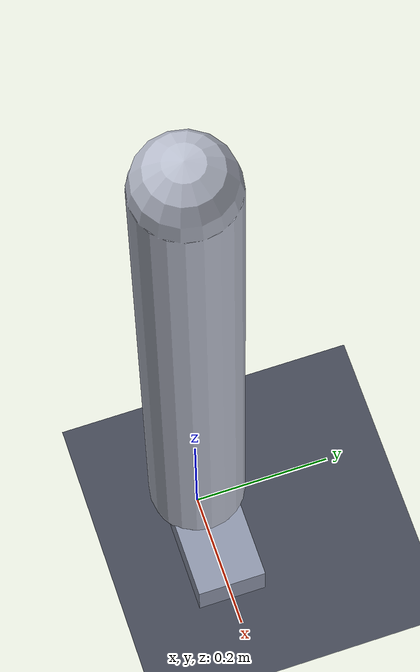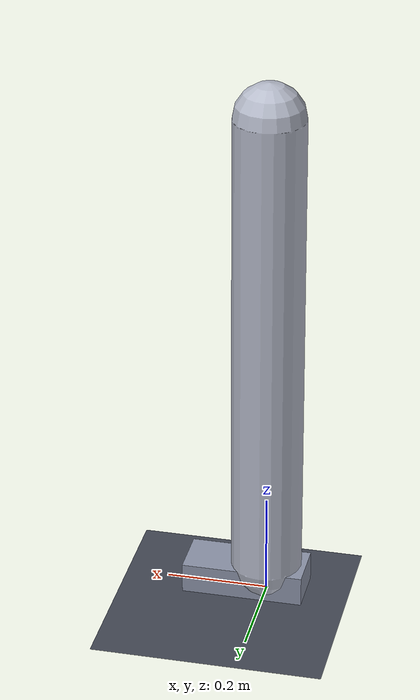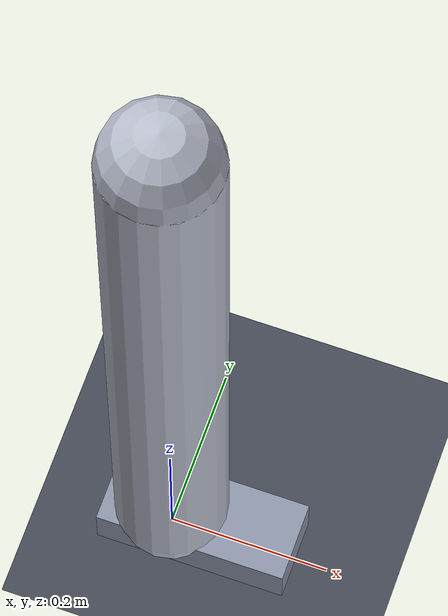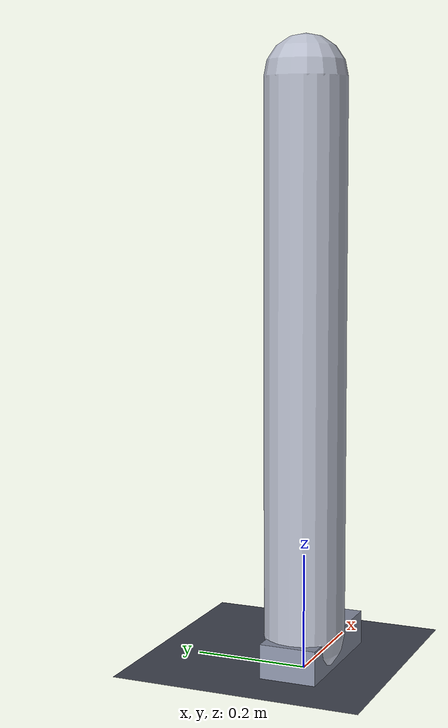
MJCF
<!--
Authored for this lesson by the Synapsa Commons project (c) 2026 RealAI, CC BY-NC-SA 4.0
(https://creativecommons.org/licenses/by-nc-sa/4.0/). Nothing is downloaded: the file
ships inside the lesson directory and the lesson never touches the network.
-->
<mujoco model="f15l04_stander">
  <compiler angle="radian" autolimits="true"/>

  <option timestep="0.002" integrator="implicitfast" gravity="0 0 -9.81"/>

  <default>
    <geom friction="1.0 0.005 0.0001" solref="0.008 1" solimp="0.95 0.99 0.001"/>
  </default>

  <visual>
    <rgba haze="0.15 0.25 0.35 1"/>
    <global elevation="-15" azimuth="90"/>
  </visual>

  <worldbody>
    <light pos="0 0 3" dir="0 0 -1" diffuse="0.8 0.8 0.8"/>
    <geom name="floor" type="plane" size="5 5 0.1" pos="0 0 0" rgba="0.26 0.28 0.33 1"/>

    <body name="foot" pos="0 0 0.03">
      <joint name="slide_x" type="slide" axis="1 0 0"/>
      <joint name="slide_z" type="slide" axis="0 0 1"/>
      <joint name="pitch"   type="hinge" axis="0 1 0"/>
      <!-- Box centre 0.04 m ahead of the ankle: footprint -0.08 (heel) .. +0.16 (toe). -->
      <geom name="foot_geom" type="box" size="0.12 0.05 0.03" pos="0.04 0 0" mass="1.5"
            rgba="0.55 0.58 0.66 1"/>

      <body name="torso" pos="0 0 0.03">
        <joint name="ankle" type="hinge" axis="0 1 0" range="-0.8 0.8" damping="1.0"/>
        <!-- contype/conaffinity 0: the torso cannot touch anything, so the support polygon
             is exactly the footprint and a fall is read from state, not from a collision. -->
        <geom name="torso_geom" type="capsule" fromto="0 0 0 0 0 0.95" size="0.07" mass="18"
              contype="0" conaffinity="0" rgba="0.72 0.74 0.80 1"/>
        <site name="head" pos="0 0 0.95" size="0.02"/>
      </body>
    </body>
  </worldbody>

  <actuator>
    <!-- A direct torque motor: data.ctrl[0] is a TORQUE IN NEWTON-METRES, not a target
         angle. The limit is far above what the foot can accept; see the note above. -->
    <motor name="ankle_torque" joint="ankle" gear="1" ctrllimited="true" ctrlrange="-60 60"/>
  </actuator>

  <keyframe>
    <key name="stand" qpos="0 0 0 0" qvel="0 0 0 0"/>
  </keyframe>
</mujoco>
